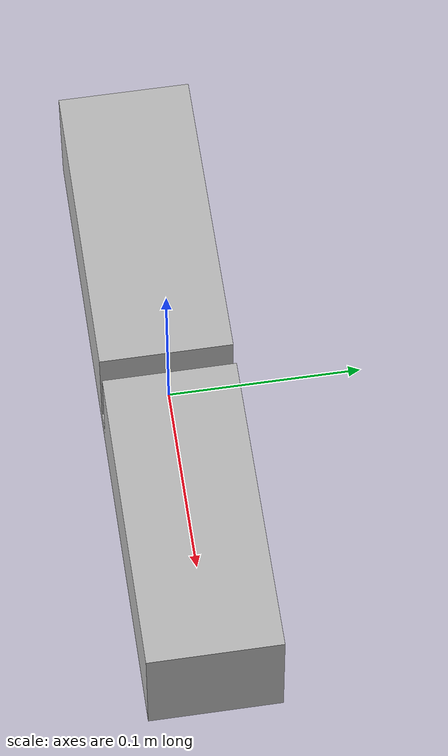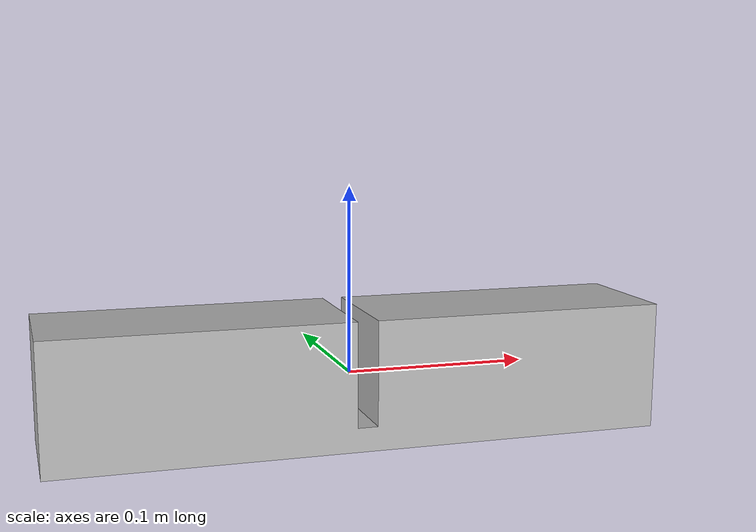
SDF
<?xml version="1.0" encoding="UTF-8" ?>
<sdf version="1.4">
  <!--Generated by blend2world.py-->
    <model name="wall_stand">
      <pose>0.0 0.0 0.0  0.0 0.0 0.0</pose>
      <static>true</static>
      <link name="body">
        <collision name="collision">
          <geometry>
            <mesh>
              <uri>model://wall_stand/meshes/wall_stand.dae</uri>
              <scale>1 1 1</scale>
            </mesh>
          </geometry>
        </collision>
        <visual name="visual">
          <geometry>
            <mesh>
              <uri>model://wall_stand/meshes/wall_stand.dae</uri>
              <scale>1 1 1</scale>
            </mesh>
          </geometry>
	  <material>
            <script>
              <uri>model://wall_stand/textures/ahorn_gr.jpg</uri>
            </script>
          </material>
        </visual>
      </link>
    </model>
</sdf>
